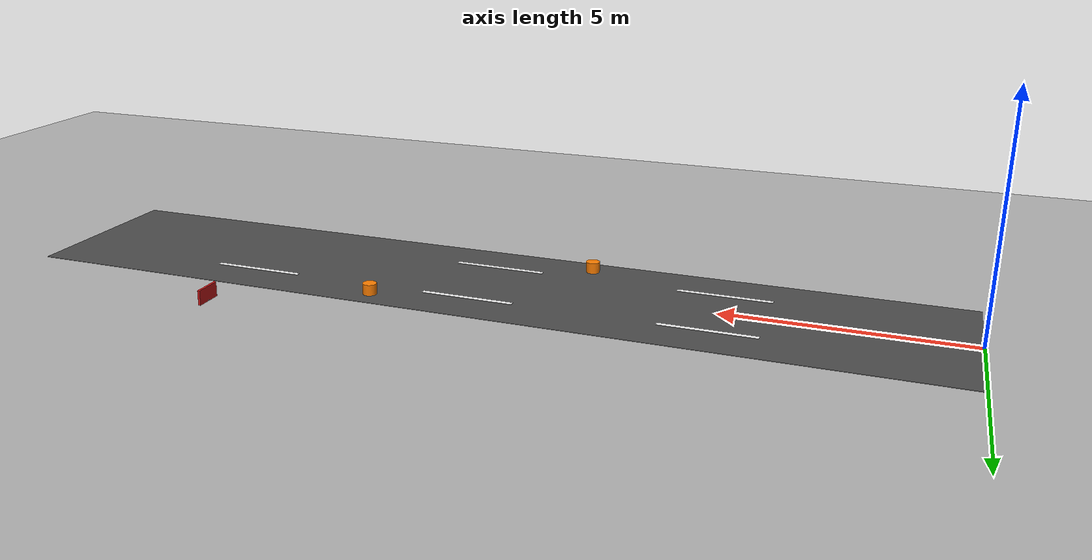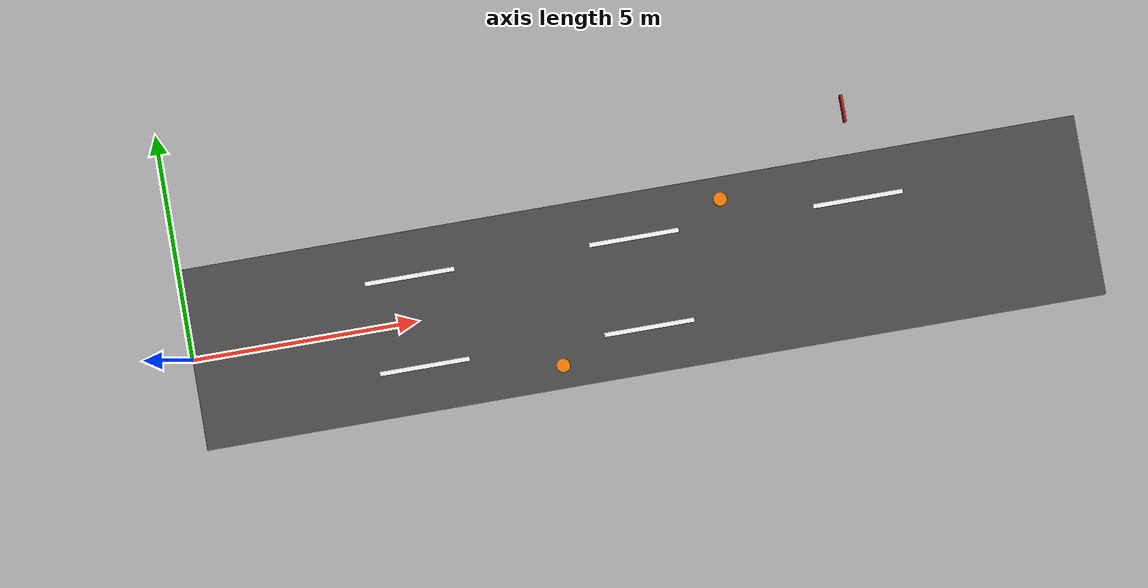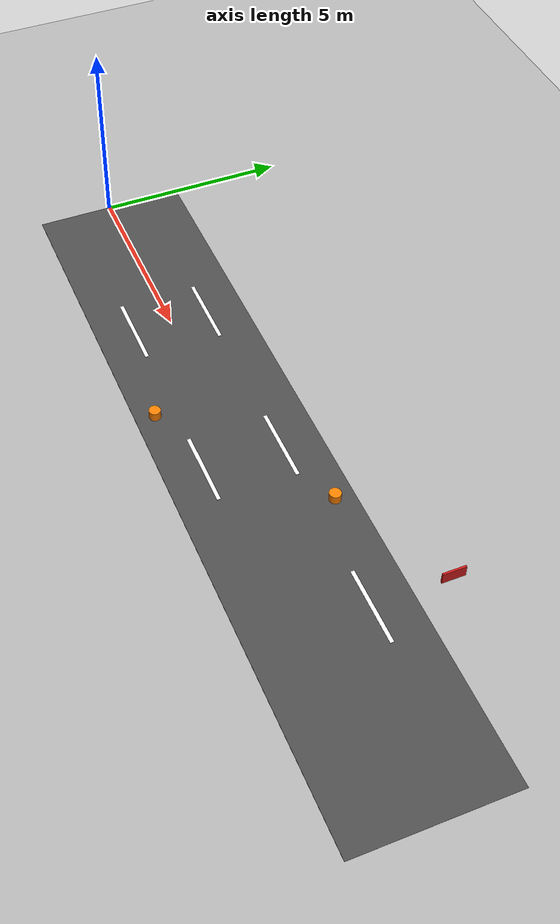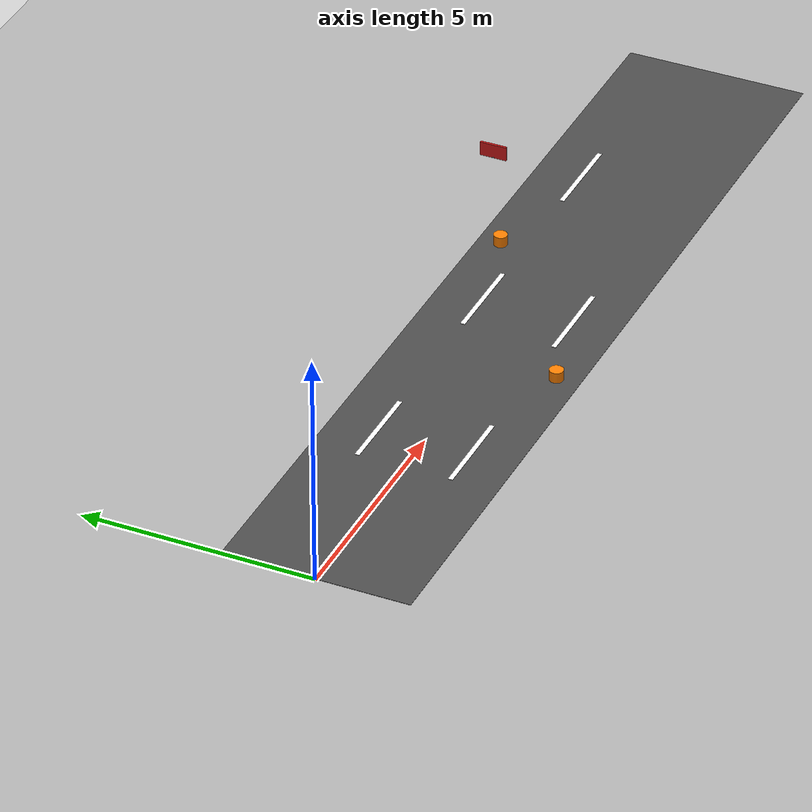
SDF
<?xml version="1.0"?>

<sdf version="1.6">
  <world name="test_track_world">

    <!-- FİZİK AYARLARI -->

    <physics type="ode">
      <max_step_size>0.001</max_step_size>
      <real_time_factor>1.0</real_time_factor>
      <real_time_update_rate>1000.0</real_time_update_rate>
      <gravity>0 0 -9.81</gravity>
    </physics>

    <!-- IŞIKLANDIRMA -->

    <!-- Güneş ışığı -->
    <include>
      <uri>model://sun</uri>
    </include>

    <!-- Ortam ışığı -->
    <light name="ambient_light" type="ambient">
      <cast_shadows>false</cast_shadows>
      <diffuse>0.7 0.7 0.7 1</diffuse>
      <specular>0.1 0.1 0.1 1</specular>
      <direction>0.5 0.5 -1.0</direction>
    </light>

    <!-- Nokta ışık kaynağı -->
    <light name="point_light" type="point">
      <pose>0 0 10 0 0 0</pose>
      <diffuse>0.5 0.5 0.5 1</diffuse>
      <specular>0.1 0.1 0.1 1</specular>
      <attenuation>
        <range>50</range>
        <constant>0.5</constant>
        <linear>0.01</linear>
        <quadratic>0.001</quadratic>
      </attenuation>
      <cast_shadows>false</cast_shadows>
    </light>

    <!-- ZEMİN (GROUND PLANE) -->

    <model name="ground_plane">
      <static>true</static>
      <link name="link">
        <collision name="collision">
          <geometry>
            <plane>
              <normal>0 0 1</normal>
              <size>100 100</size>
            </plane>
          </geometry>
          <surface>
            <friction>
              <ode>
                <mu>100</mu>
                <mu2>50</mu2>
              </ode>
            </friction>
          </surface>
        </collision>

        <visual name="visual">
          <cast_shadows>false</cast_shadows>
          <geometry>
            <plane>
              <normal>0 0 1</normal>
              <size>100 100</size>
            </plane>
          </geometry>
          <material>
            <ambient>0.3 0.3 0.3 1</ambient>
            <diffuse>0.7 0.7 0.7 1</diffuse>
            <specular>0.01 0.01 0.01 1</specular>
          </material>
        </visual>
      </link>
    </model>

    <!-- YOL DOKUSU (ŞERIT ÇİZGİLERİ İLE) -->

    <!-- TODO KİŞİ 2: Aşağıya gerçek yol dokusu ekleyin -->
    <!-- Seçenek 1: Hazır texture kullanın (road.png dosyası) -->
    <!-- Seçenek 2: Box'larla şerit çizgileri oluşturun -->

    <!-- Ana Yol -->
    <model name="road_straight">
      <static>true</static>
      <pose>10 0 0.01 0 0 0</pose>
      <link name="link">
        <collision name="collision">
          <geometry>
            <box>
              <size>20 4 0.01</size>
            </box>
          </geometry>
        </collision>

        <visual name="visual">
          <geometry>
            <box>
              <size>20 4 0.01</size>
            </box>
          </geometry>
          <material>
            <ambient>0.2 0.2 0.2 1</ambient>
            <diffuse>0.3 0.3 0.3 1</diffuse>
            <!-- TODO KİŞİ 2: Texture ekleyin -->
          </material>
        </visual>
      </link>
    </model>

    <!-- Şerit Çizgileri (Beyaz Kesikli) -->
    <!-- Sol şerit -->
    <model name="lane_line_left_1">
      <static>true</static>
      <pose>5 1 0.02 0 0 0</pose>
      <link name="link">
        <visual name="visual">
          <geometry>
            <box>
              <size>2 0.1 0.01</size>
            </box>
          </geometry>
          <material>
            <ambient>1 1 1 1</ambient>
            <diffuse>1 1 1 1</diffuse>
          </material>
        </visual>
      </link>
    </model>

    <model name="lane_line_left_2">
      <static>true</static>
      <pose>10 1 0.02 0 0 0</pose>
      <link name="link">
        <visual name="visual">
          <geometry>
            <box>
              <size>2 0.1 0.01</size>
            </box>
          </geometry>
          <material>
            <ambient>1 1 1 1</ambient>
            <diffuse>1 1 1 1</diffuse>
          </material>
        </visual>
      </link>
    </model>

    <model name="lane_line_left_3">
      <static>true</static>
      <pose>15 1 0.02 0 0 0</pose>
      <link name="link">
        <visual name="visual">
          <geometry>
            <box>
              <size>2 0.1 0.01</size>
            </box>
          </geometry>
          <material>
            <ambient>1 1 1 1</ambient>
            <diffuse>1 1 1 1</diffuse>
          </material>
        </visual>
      </link>
    </model>

    <!-- Sağ şerit (aynı şekilde) -->
    <model name="lane_line_right_1">
      <static>true</static>
      <pose>5 -1 0.02 0 0 0</pose>
      <link name="link">
        <visual name="visual">
          <geometry>
            <box>
              <size>2 0.1 0.01</size>
            </box>
          </geometry>
          <material>
            <ambient>1 1 1 1</ambient>
            <diffuse>1 1 1 1</diffuse>
          </material>
        </visual>
      </link>
    </model>

    <model name="lane_line_right_2">
      <static>true</static>
      <pose>10 -1 0.02 0 0 0</pose>
      <link name="link">
        <visual name="visual">
          <geometry>
            <box>
              <size>2 0.1 0.01</size>
            </box>
          </geometry>
          <material>
            <ambient>1 1 1 1</ambient>
            <diffuse>1 1 1 1</diffuse>
          </material>
        </visual>
      </link>
    </model>

    <!-- TODO KİŞİ 2: Daha fazla şerit çizgisi ekleyin -->

    <!-- TRAFİK İŞARETLERİ -->

    <!-- TODO KİŞİ 2: Gazebo model kütüphanesinden işaretler ekleyin -->

    <!-- Örnek: Dur İşareti -->
    <model name="stop_sign">
      <static>true</static>
      <pose>15 3 0 0 0 0</pose>
      <link name="link">
        <collision name="collision">
          <geometry>
            <box>
              <size>0.05 0.6 0.6</size>
            </box>
          </geometry>
        </collision>

        <visual name="visual">
          <geometry>
            <box>
              <size>0.05 0.6 0.6</size>
            </box>
          </geometry>
          <material>
            <ambient>0.8 0.1 0.1 1</ambient>
            <diffuse>0.8 0.1 0.1 1</diffuse>
          </material>
        </visual>

        <!-- Direk -->
        <visual name="pole">
          <pose>0 0 -0.5 0 0 0</pose>
          <geometry>
            <cylinder>
              <radius>0.03</radius>
              <length>1.0</length>
            </cylinder>
          </geometry>
          <material>
            <ambient>0.5 0.5 0.5 1</ambient>
            <diffuse>0.5 0.5 0.5 1</diffuse>
          </material>
        </visual>
      </link>
    </model>

    <!-- TODO KİŞİ 2: Hız limiti, dönüş işaretleri vs. ekleyin -->

    <!-- ENGELLER -->

    <!-- Koni 1 -->
    <model name="cone_1">
      <static>true</static>
      <pose>8 -1.5 0 0 0 0</pose>
      <link name="link">
        <collision name="collision">
          <geometry>
            <cylinder>
              <radius>0.15</radius>
              <length>0.5</length>
            </cylinder>
          </geometry>
        </collision>

        <visual name="visual">
          <geometry>
            <cylinder>
              <radius>0.15</radius>
              <length>0.5</length>
            </cylinder>
          </geometry>
          <material>
            <ambient>1 0.5 0 1</ambient>
            <diffuse>1 0.5 0 1</diffuse>
          </material>
        </visual>
      </link>
    </model>

    <model name="cone_2">
      <static>true</static>
      <pose>12 1.5 0 0 0 0</pose>
      <link name="link">
        <collision name="collision">
          <geometry>
            <cylinder>
              <radius>0.15</radius>
              <length>0.5</length>
            </cylinder>
          </geometry>
        </collision>

        <visual name="visual">
          <geometry>
            <cylinder>
              <radius>0.15</radius>
              <length>0.5</length>
            </cylinder>
          </geometry>
          <material>
            <ambient>1 0.5 0 1</ambient>
            <diffuse>1 0.5 0 1</diffuse>
          </material>
        </visual>
      </link>
    </model>

    <!-- TODO KİŞİ 2: Daha fazla engel ekleyin (bariyerler, kutular vs.) -->

    <!-- VİRAJ BÖLÜMÜ -->

    <!-- TODO KİŞİ 2: Virajlı yol segmenti ekleyin -->
    <!-- İpucu: Box'ları rotate ederek viraj oluşturabilirsiniz -->

    <!-- GUI AYARLARI -->

    <gui fullscreen='0'>
      <camera name='user_camera'>
        <pose>-5 -5 3 0 0.3 0.78</pose>
        <view_controller>orbit</view_controller>
        <projection_type>perspective</projection_type>
      </camera>
    </gui>

    <!-- GAZEBO PLUGINS -->

    <!-- ROS Interface Plugin -->
    <plugin name="gazebo_ros_state" filename="libgazebo_ros_state.so">
      <ros>
        <namespace>/gazebo</namespace>
      </ros>
      <update_rate>10.0</update_rate>
    </plugin>

  </world>
</sdf>
